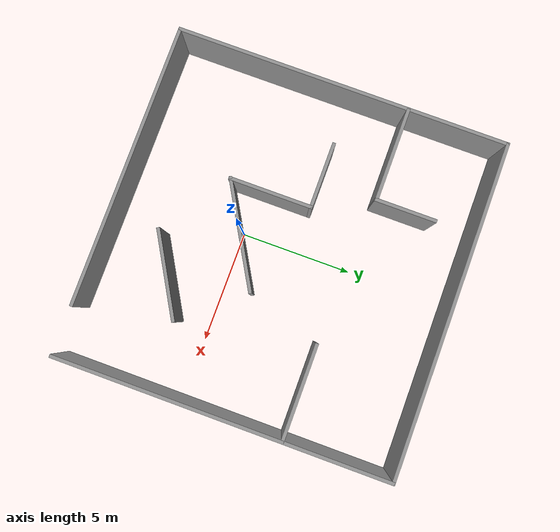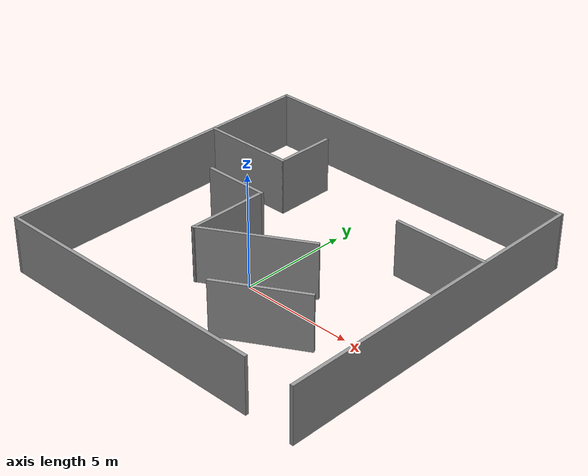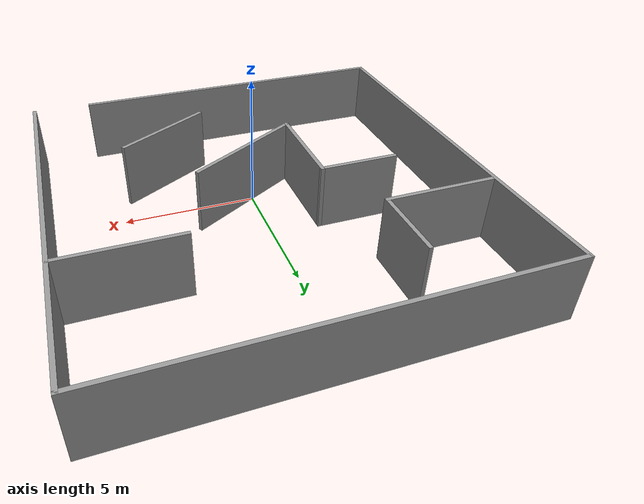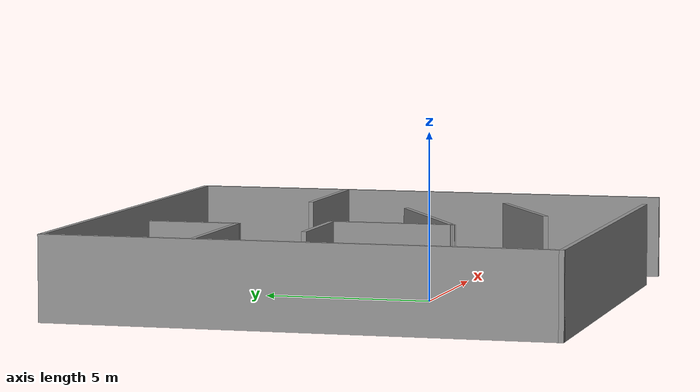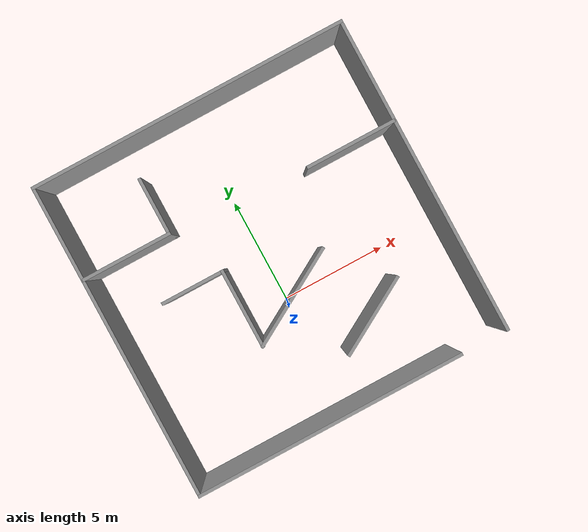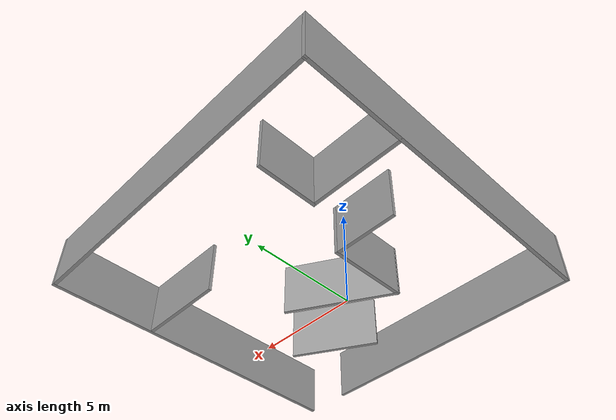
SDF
<?xml version='1.0'?>
<sdf version='1.7'>
  <model name='gMaze2'>
    <pose>0.232483 1.97641 0 0 -0 0</pose>
    <link name='Wall_10'>
      <collision name='Wall_10_Collision'>
        <geometry>
          <box>
            <size>15 0.15 2.5</size>
          </box>
        </geometry>
        <pose>0 0 1.25 0 -0 0</pose>
      </collision>
      <visual name='Wall_10_Visual'>
        <pose>0 0 1.25 0 -0 0</pose>
        <geometry>
          <box>
            <size>15 0.15 2.5</size>
          </box>
        </geometry>
        <material>
          <script>
            <uri>file://media/materials/scripts/gazebo.material</uri>
            <name>Gazebo/Grey</name>
          </script>
          <ambient>1 1 1 1</ambient>
        </material>
        <meta>
          <layer>0</layer>
        </meta>
      </visual>
      <pose>0 7.425 0 0 -0 0</pose>
    </link>
    <link name='Wall_12'>
      <collision name='Wall_12_Collision'>
        <geometry>
          <box>
            <size>12.75 0.15 2.5</size>
          </box>
        </geometry>
        <pose>0 0 1.25 0 -0 0</pose>
      </collision>
      <visual name='Wall_12_Visual'>
        <pose>0 0 1.25 0 -0 0</pose>
        <geometry>
          <box>
            <size>12.75 0.15 2.5</size>
          </box>
        </geometry>
        <material>
          <script>
            <uri>file://media/materials/scripts/gazebo.material</uri>
            <name>Gazebo/Grey</name>
          </script>
          <ambient>1 1 1 1</ambient>
        </material>
        <meta>
          <layer>0</layer>
        </meta>
      </visual>
      <pose>-1.125 -7.425 0 0 -0 0</pose>
    </link>
    <link name='Wall_14'>
      <collision name='Wall_14_Collision'>
        <geometry>
          <box>
            <size>4 0.15 2.5</size>
          </box>
        </geometry>
        <pose>0 0 1.25 0 -0 0</pose>
      </collision>
      <visual name='Wall_14_Visual'>
        <pose>0 0 1.25 0 -0 0</pose>
        <geometry>
          <box>
            <size>4 0.15 2.5</size>
          </box>
        </geometry>
        <material>
          <script>
            <uri>file://media/materials/scripts/gazebo.material</uri>
            <name>Gazebo/Grey</name>
          </script>
          <ambient>1 1 1 1</ambient>
        </material>
        <meta>
          <layer>0</layer>
        </meta>
      </visual>
      <pose>2.6853 -4.21987 0 0 -0 -2.61799</pose>
    </link>
    <link name='Wall_16'>
      <collision name='Wall_16_Collision'>
        <geometry>
          <box>
            <size>5 0.15 2.5</size>
          </box>
        </geometry>
        <pose>0 0 1.25 0 -0 0</pose>
      </collision>
      <visual name='Wall_16_Visual'>
        <pose>0 0 1.25 0 -0 0</pose>
        <geometry>
          <box>
            <size>5 0.15 2.5</size>
          </box>
        </geometry>
        <material>
          <script>
            <uri>file://media/materials/scripts/gazebo.material</uri>
            <name>Gazebo/Grey</name>
          </script>
          <ambient>1 1 1 1</ambient>
        </material>
        <meta>
          <layer>0</layer>
        </meta>
      </visual>
      <pose>0.055773 -1.89388 0 0 -0 0.523599</pose>
    </link>
    <link name='Wall_18'>
      <collision name='Wall_18_Collision'>
        <geometry>
          <box>
            <size>3.75 0.15 2.5</size>
          </box>
        </geometry>
        <pose>0 0 1.25 0 -0 0</pose>
      </collision>
      <visual name='Wall_18_Visual'>
        <pose>0 0 1.25 0 -0 0</pose>
        <geometry>
          <box>
            <size>3.75 0.15 2.5</size>
          </box>
        </geometry>
        <material>
          <script>
            <uri>file://media/materials/scripts/gazebo.material</uri>
            <name>Gazebo/Grey</name>
          </script>
          <ambient>1 1 1 1</ambient>
        </material>
        <meta>
          <layer>0</layer>
        </meta>
      </visual>
      <pose>-2.04434 -1.30638 0 0 -0 1.5708</pose>
    </link>
    <link name='Wall_19'>
      <collision name='Wall_19_Collision'>
        <geometry>
          <box>
            <size>3 0.15 2.5</size>
          </box>
        </geometry>
        <pose>0 0 1.25 0 -0 0</pose>
      </collision>
      <visual name='Wall_19_Visual'>
        <pose>0 0 1.25 0 -0 0</pose>
        <geometry>
          <box>
            <size>3 0.15 2.5</size>
          </box>
        </geometry>
        <material>
          <script>
            <uri>file://media/materials/scripts/gazebo.material</uri>
            <name>Gazebo/Grey</name>
          </script>
          <ambient>1 1 1 1</ambient>
        </material>
        <meta>
          <layer>0</layer>
        </meta>
      </visual>
      <pose>-3.46934 0.493623 0 0 -0 3.14159</pose>
    </link>
    <link name='Wall_21'>
      <collision name='Wall_21_Collision'>
        <geometry>
          <box>
            <size>4.25 0.15 2.5</size>
          </box>
        </geometry>
        <pose>0 0 1.25 0 -0 0</pose>
      </collision>
      <visual name='Wall_21_Visual'>
        <pose>0 0 1.25 0 -0 0</pose>
        <geometry>
          <box>
            <size>4.25 0.15 2.5</size>
          </box>
        </geometry>
        <material>
          <script>
            <uri>file://media/materials/scripts/gazebo.material</uri>
            <name>Gazebo/Grey</name>
          </script>
          <ambient>1 1 1 1</ambient>
        </material>
        <meta>
          <layer>0</layer>
        </meta>
      </visual>
      <pose>5.3257 2.65314 0 0 -0 0</pose>
    </link>
    <link name='Wall_25'>
      <collision name='Wall_25_Collision'>
        <geometry>
          <box>
            <size>4.25 0.15 2.5</size>
          </box>
        </geometry>
        <pose>0 0 1.25 0 -0 0</pose>
      </collision>
      <visual name='Wall_25_Visual'>
        <pose>0 0 1.25 0 -0 0</pose>
        <geometry>
          <box>
            <size>4.25 0.15 2.5</size>
          </box>
        </geometry>
        <material>
          <script>
            <uri>file://media/materials/scripts/gazebo.material</uri>
            <name>Gazebo/Grey</name>
          </script>
          <ambient>1 1 1 1</ambient>
        </material>
        <meta>
          <layer>0</layer>
        </meta>
      </visual>
      <pose>-5.32695 2.97834 0 0 -0 0</pose>
    </link>
    <link name='Wall_26'>
      <collision name='Wall_26_Collision'>
        <geometry>
          <box>
            <size>2.75 0.15 2.5</size>
          </box>
        </geometry>
        <pose>0 0 1.25 0 -0 0</pose>
      </collision>
      <visual name='Wall_26_Visual'>
        <pose>0 0 1.25 0 -0 0</pose>
        <geometry>
          <box>
            <size>2.75 0.15 2.5</size>
          </box>
        </geometry>
        <material>
          <script>
            <uri>file://media/materials/scripts/gazebo.material</uri>
            <name>Gazebo/Grey</name>
          </script>
          <ambient>1 1 1 1</ambient>
        </material>
        <meta>
          <layer>0</layer>
        </meta>
      </visual>
      <pose>-3.27695 4.27834 0 0 -0 1.5708</pose>
    </link>
    <link name='Wall_7'>
      <collision name='Wall_7_Collision'>
        <geometry>
          <box>
            <size>15 0.15 2.5</size>
          </box>
        </geometry>
        <pose>0 0 1.25 0 -0 0</pose>
      </collision>
      <visual name='Wall_7_Visual'>
        <pose>0 0 1.25 0 -0 0</pose>
        <geometry>
          <box>
            <size>15 0.15 2.5</size>
          </box>
        </geometry>
        <material>
          <script>
            <uri>file://media/materials/scripts/gazebo.material</uri>
            <name>Gazebo/Grey</name>
          </script>
          <ambient>1 1 1 1</ambient>
        </material>
        <meta>
          <layer>0</layer>
        </meta>
      </visual>
      <pose>7.425 0 0 0 -0 1.5708</pose>
    </link>
    <link name='Wall_9'>
      <collision name='Wall_9_Collision'>
        <geometry>
          <box>
            <size>15 0.15 2.5</size>
          </box>
        </geometry>
        <pose>0 0 1.25 0 -0 0</pose>
      </collision>
      <visual name='Wall_9_Visual'>
        <pose>0 0 1.25 0 -0 0</pose>
        <geometry>
          <box>
            <size>15 0.15 2.5</size>
          </box>
        </geometry>
        <material>
          <script>
            <uri>file://media/materials/scripts/gazebo.material</uri>
            <name>Gazebo/Grey</name>
          </script>
          <ambient>1 1 1 1</ambient>
        </material>
        <meta>
          <layer>0</layer>
        </meta>
      </visual>
      <pose>-7.425 0 0 0 -0 1.5708</pose>
    </link>
    <static>1</static>
  </model>
</sdf>
